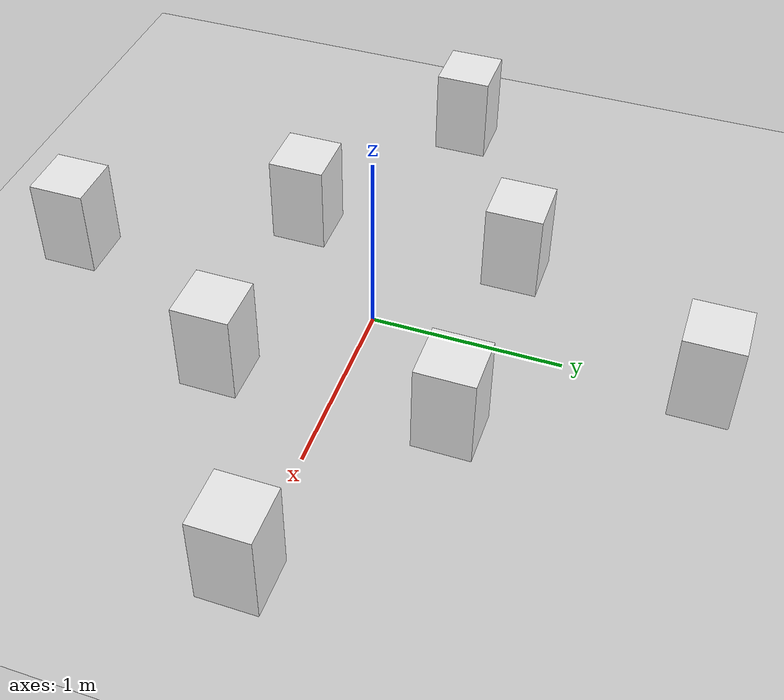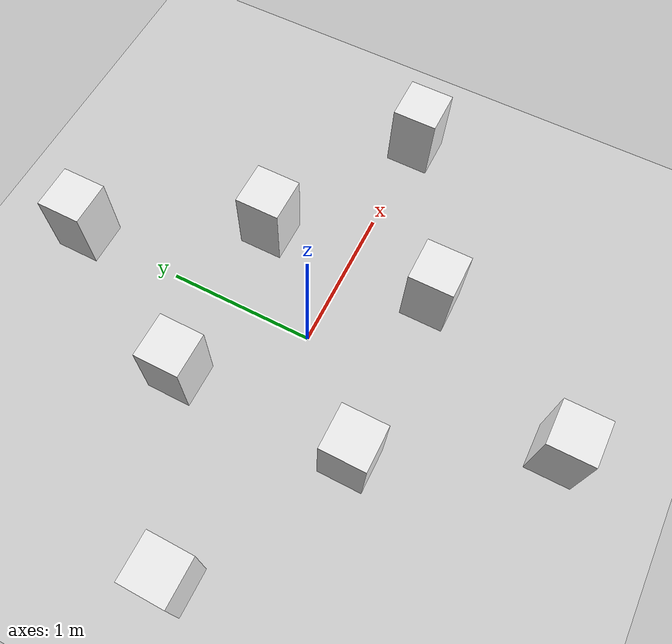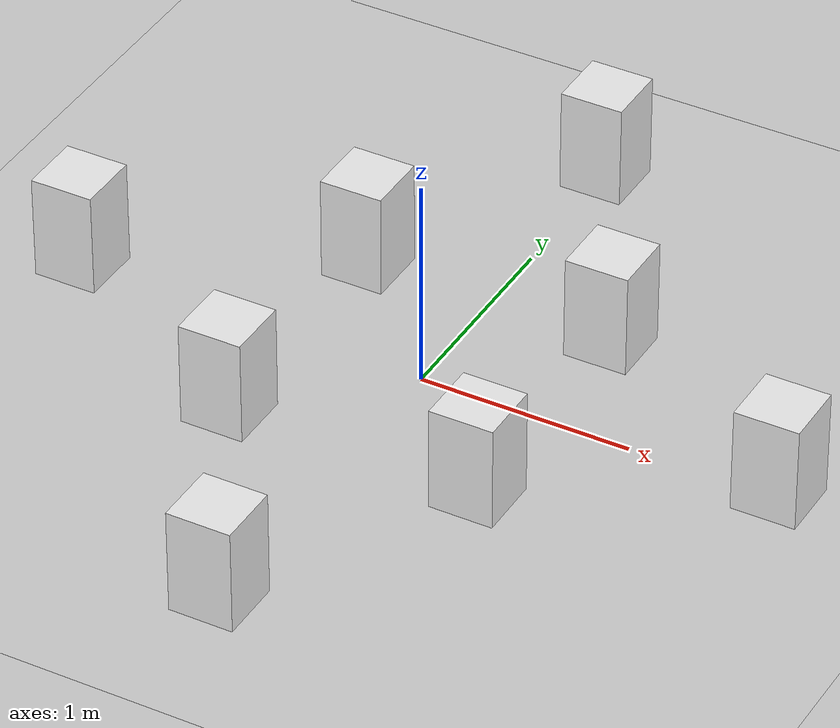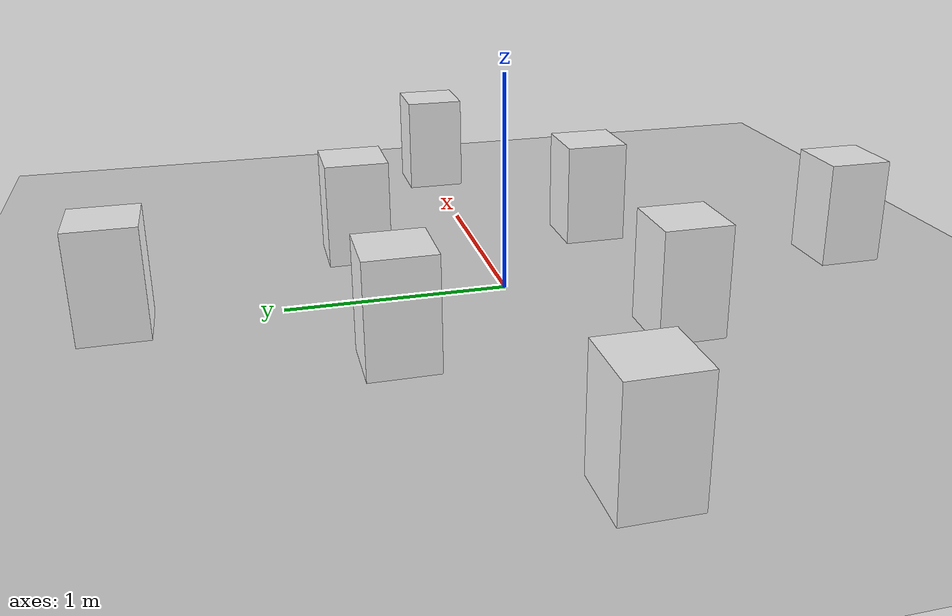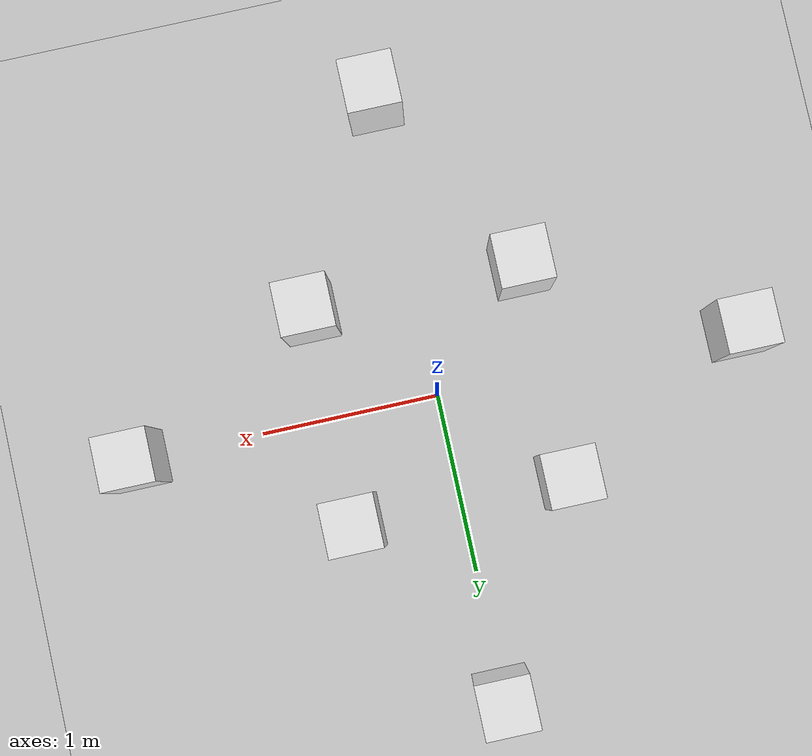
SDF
<sdf version="1.4">
 <world name="default">
  <include><uri>model://sun</uri></include>
  <include><uri>model://ground_plane</uri></include>
  <physics type="ode">
   <real_time_update_rate>0.0</real_time_update_rate>
   <max_step_size>0.001</max_step_size>
   <real_time_factor>1</real_time_factor>
   <ode>
    <solver>
     <type>quick</type>
     <iters>150</iters>
     <precon_iters>0</precon_iters>
     <sor>1.400000</sor>
     <use_dynamic_moi_rescaling>1</use_dynamic_moi_rescaling>
    </solver>
    <constraints>
     <cfm>0.00001</cfm>
     <erp>0.2</erp>
     <contact_max_correcting_vel>2000.000000</contact_max_correcting_vel>
     <contact_surface_layer>0.01000</contact_surface_layer>
    </constraints>
   </ode>
  </physics>
  <model name="obstacle">
   <link name="obstacle">
    <collision name="obstacle_1">
     <pose>-0.6 -0.6 0.25 0 0 0</pose>
     <geometry><box><size>0.30 0.30 0.50</size></box></geometry>
    </collision>
    <visual name="obstacle_1">
     <pose>-0.6 -0.6 0.25 0 0 0</pose>
     <geometry><box><size>0.30 0.30 0.50</size></box></geometry>
     <material>
      <script><uri>file://media/materials/scripts/gazebo.material</uri><name>Gazebo/White</name></script>
     </material>
    </visual>
    <collision name="obstacle_2">
     <pose>-0.6 0.6 0.25 0 0 0</pose>
     <geometry><box><size>0.30 0.30 0.50</size></box></geometry>
    </collision>
    <visual name="obstacle_2">
     <pose>-0.6 0.6 0.25 0 0 0</pose>
     <geometry><box><size>0.30 0.30 0.50</size></box></geometry>
     <material>
      <script><uri>file://media/materials/scripts/gazebo.material</uri><name>Gazebo/White</name></script>
     </material>
    </visual>
    <collision name="obstacle_3">
     <pose>0.6 -0.6 0.25 0 0 0</pose>
     <geometry><box><size>0.30 0.30 0.50</size></box></geometry>
    </collision>
    <visual name="obstacle_3">
     <pose>0.6 -0.6 0.25 0 0 0</pose>
     <geometry><box><size>0.30 0.30 0.50</size></box></geometry>
     <material>
      <script><uri>file://media/materials/scripts/gazebo.material</uri><name>Gazebo/White</name></script>
     </material>
    </visual>
    <collision name="obstacle_4">
     <pose>0.6 0.6 0.25 0 0 0</pose>
     <geometry><box><size>0.30 0.30 0.50</size></box></geometry>
    </collision>
    <visual name="obstacle_4">
     <pose>0.6 0.6 0.25 0 0 0</pose>
     <geometry><box><size>0.30 0.30 0.50</size></box></geometry>
     <material>
      <script><uri>file://media/materials/scripts/gazebo.material</uri><name>Gazebo/White</name></script>
     </material>
    </visual>
    <collision name="obstacle_5">
     <pose>1.7 0.0 0.25 0 0 0</pose>
     <geometry><box><size>0.30 0.30 0.50</size></box></geometry>
    </collision>
    <visual name="obstacle_5">
     <pose>1.7 0.0 0.25 0 0 0</pose>
     <geometry><box><size>0.30 0.30 0.50</size></box></geometry>
     <material>
      <script><uri>file://media/materials/scripts/gazebo.material</uri><name>Gazebo/White</name></script>
     </material>
    </visual>
    <collision name="obstacle_6">
     <pose>-1.7 0.0 0.25 0 0 0</pose>
     <geometry><box><size>0.30 0.30 0.50</size></box></geometry>
    </collision>
    <visual name="obstacle_6">
     <pose>-1.7 0.0 0.25 0 0 0</pose>
     <geometry><box><size>0.30 0.30 0.50</size></box></geometry>
     <material>
      <script><uri>file://media/materials/scripts/gazebo.material</uri><name>Gazebo/White</name></script>
     </material>
    </visual>
    <collision name="obstacle_7">
     <pose>0.0 1.7 0.25 0 0 0</pose>
     <geometry><box><size>0.30 0.30 0.50</size></box></geometry>
    </collision>
    <visual name="obstacle_7">
     <pose>0.0 1.7 0.25 0 0 0</pose>
     <geometry><box><size>0.30 0.30 0.50</size></box></geometry>
     <material>
      <script><uri>file://media/materials/scripts/gazebo.material</uri><name>Gazebo/White</name></script>
     </material>
    </visual>
    <collision name="obstacle_8">
     <pose>0.0 -1.7 0.25 0 0 0</pose>
     <geometry><box><size>0.30 0.30 0.50</size></box></geometry>
    </collision>
    <visual name="obstacle_8">
     <pose>0.0 -1.7 0.25 0 0 0</pose>
     <geometry><box><size>0.30 0.30 0.50</size></box></geometry>
     <material>
      <script><uri>file://media/materials/scripts/gazebo.material</uri><name>Gazebo/White</name></script>
     </material>
    </visual>
   </link>
   <static>1</static>
  </model>
  <scene><ambient>0.4 0.4 0.4 1</ambient><background>0.7 0.7 0.7 1</background><shadows>true</shadows></scene>
 </world>
</sdf>
